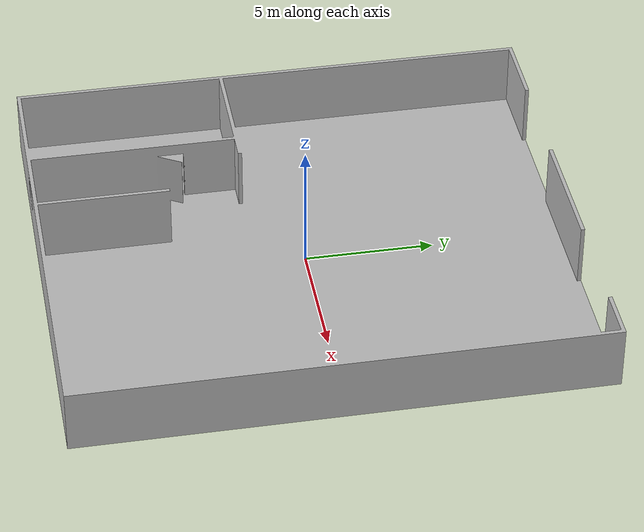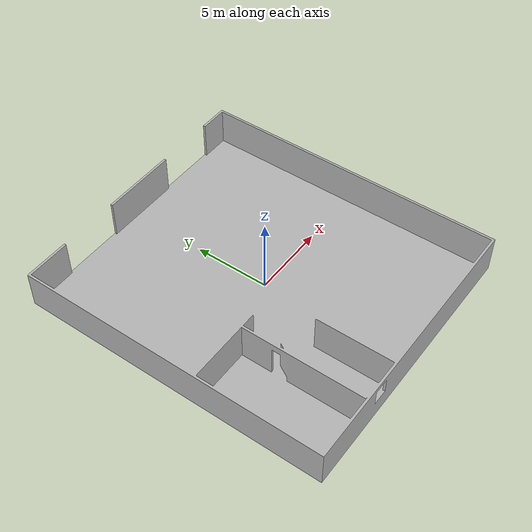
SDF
<?xml version="1.0" ?>
<sdf version="1.6">
  <model name="floor_sketch">
    <static>true</static>
    <link name="link">
      <visual name="visual">
        <geometry>
          <mesh>
            <uri>model://floor_sketch/meshes/floor_sketch.obj</uri>
          </mesh>
        </geometry>
      </visual>
      <collision name="collision">
        <geometry>
          <mesh>
            <uri>model://floor_sketch/meshes/floor_sketch.obj</uri>
          </mesh>
        </geometry>
      </collision>
    </link>
  </model>
</sdf>
